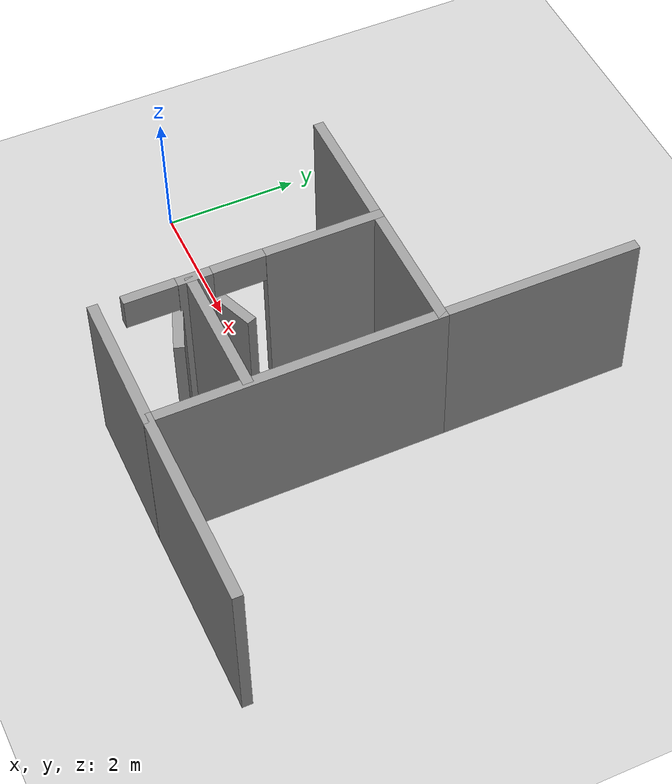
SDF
<sdf version="1.7">
 <world name="default">
  <model name="ground_plane">
   <static>1</static>
   <link name="link">
    <collision name="collision">
     <geometry><plane><normal>0 0 1</normal><size>100 100</size></plane></geometry>
     <surface>
      <contact><collide_bitmask>65535</collide_bitmask></contact>
      <friction><ode><mu>100</mu><mu2>50</mu2></ode></friction>
     </surface>
    </collision>
    <visual name="visual">
     <cast_shadows>0</cast_shadows>
     <geometry><plane><normal>0 0 1</normal><size>100 100</size></plane></geometry>
     <material>
      <script><uri>file://media/materials/scripts/gazebo.material</uri><name>Gazebo/Grey</name></script>
     </material>
    </visual>
   </link>
  </model>
  <model name="demo_clean">
   <link name="Wall_10">
    <pose>5.30351 3.31618 0 0 0 -1.5708</pose>
    <visual name="Wall_10_Visual">
     <pose>0 0 1.25 0 -0 0</pose>
     <geometry><box><size>3 0.15 2.5</size></box></geometry>
     <material>
      <script><uri>file://media/materials/scripts/gazebo.material</uri><name>Gazebo/Grey</name></script>
      <ambient>1 1 1 1</ambient>
      <shader type="pixel"/>
     </material>
     <meta><layer>0</layer></meta>
    </visual>
    <collision name="Wall_10_Collision">
     <pose>0 0 1.25 0 -0 0</pose>
     <geometry><box><size>3 0.15 2.5</size></box></geometry>
     <surface>
      <friction>
       <ode><mu>1</mu><mu2>1</mu2><fdir1>0 0 0</fdir1><slip1>0</slip1><slip2>0</slip2></ode>
       <torsional>
        <coefficient>1</coefficient>
        <patch_radius>0</patch_radius>
        <surface_radius>0</surface_radius>
        <use_patch_radius>1</use_patch_radius>
        <ode><slip>0</slip></ode>
       </torsional>
      </friction>
      <bounce><restitution_coefficient>0</restitution_coefficient><threshold>1e+06</threshold></bounce>
      <contact>
       <collide_without_contact>0</collide_without_contact>
       <collide_without_contact_bitmask>1</collide_without_contact_bitmask>
       <collide_bitmask>1</collide_bitmask>
       <ode>
        <soft_cfm>0</soft_cfm>
        <soft_erp>0.2</soft_erp>
        <kp>1e+13</kp>
        <kd>1</kd>
        <max_vel>0.01</max_vel>
        <min_depth>0</min_depth>
       </ode>
       <bullet>
        <split_impulse>1</split_impulse>
        <split_impulse_penetration_threshold>-0.01</split_impulse_penetration_threshold>
        <soft_cfm>0</soft_cfm>
        <soft_erp>0.2</soft_erp>
        <kp>1e+13</kp>
        <kd>1</kd>
       </bullet>
      </contact>
     </surface>
    </collision>
   </link>
   <link name="Wall_11">
    <pose>3.37851 1.89118 0 0 -0 3.14159</pose>
    <visual name="Wall_11_Visual">
     <pose>0 0 1.25 0 -0 0</pose>
     <geometry><box><size>4 0.15 2.5</size></box></geometry>
     <material>
      <script><uri>file://media/materials/scripts/gazebo.material</uri><name>Gazebo/Grey</name></script>
      <ambient>1 1 1 1</ambient>
      <shader type="pixel"/>
     </material>
     <meta><layer>0</layer></meta>
    </visual>
    <collision name="Wall_11_Collision">
     <pose>0 0 1.25 0 -0 0</pose>
     <geometry><box><size>4 0.15 2.5</size></box></geometry>
     <surface>
      <friction>
       <ode><mu>1</mu><mu2>1</mu2><fdir1>0 0 0</fdir1><slip1>0</slip1><slip2>0</slip2></ode>
       <torsional>
        <coefficient>1</coefficient>
        <patch_radius>0</patch_radius>
        <surface_radius>0</surface_radius>
        <use_patch_radius>1</use_patch_radius>
        <ode><slip>0</slip></ode>
       </torsional>
      </friction>
      <bounce><restitution_coefficient>0</restitution_coefficient><threshold>1e+06</threshold></bounce>
      <contact>
       <collide_without_contact>0</collide_without_contact>
       <collide_without_contact_bitmask>1</collide_without_contact_bitmask>
       <collide_bitmask>1</collide_bitmask>
       <ode>
        <soft_cfm>0</soft_cfm>
        <soft_erp>0.2</soft_erp>
        <kp>1e+13</kp>
        <kd>1</kd>
        <max_vel>0.01</max_vel>
        <min_depth>0</min_depth>
       </ode>
       <bullet>
        <split_impulse>1</split_impulse>
        <split_impulse_penetration_threshold>-0.01</split_impulse_penetration_threshold>
        <soft_cfm>0</soft_cfm>
        <soft_erp>0.2</soft_erp>
        <kp>1e+13</kp>
        <kd>1</kd>
       </bullet>
      </contact>
     </surface>
    </collision>
   </link>
   <link name="Wall_13">
    <pose>5.30351 -0.158824 0 0 0 -1.5708</pose>
    <visual name="Wall_13_Visual">
     <pose>0 0 1.25 0 -0 0</pose>
     <geometry><box><size>4.25 0.15 2.5</size></box></geometry>
     <material>
      <script><uri>file://media/materials/scripts/gazebo.material</uri><name>Gazebo/Grey</name></script>
      <ambient>1 1 1 1</ambient>
      <shader type="pixel"/>
     </material>
     <meta><layer>0</layer></meta>
    </visual>
    <collision name="Wall_13_Collision">
     <pose>0 0 1.25 0 -0 0</pose>
     <geometry><box><size>4.25 0.15 2.5</size></box></geometry>
     <surface>
      <friction>
       <ode><mu>1</mu><mu2>1</mu2><fdir1>0 0 0</fdir1><slip1>0</slip1><slip2>0</slip2></ode>
       <torsional>
        <coefficient>1</coefficient>
        <patch_radius>0</patch_radius>
        <surface_radius>0</surface_radius>
        <use_patch_radius>1</use_patch_radius>
        <ode><slip>0</slip></ode>
       </torsional>
      </friction>
      <bounce><restitution_coefficient>0</restitution_coefficient><threshold>1e+06</threshold></bounce>
      <contact>
       <collide_without_contact>0</collide_without_contact>
       <collide_without_contact_bitmask>1</collide_without_contact_bitmask>
       <collide_bitmask>1</collide_bitmask>
       <ode>
        <soft_cfm>0</soft_cfm>
        <soft_erp>0.2</soft_erp>
        <kp>1e+13</kp>
        <kd>1</kd>
        <max_vel>0.01</max_vel>
        <min_depth>0</min_depth>
       </ode>
       <bullet>
        <split_impulse>1</split_impulse>
        <split_impulse_penetration_threshold>-0.01</split_impulse_penetration_threshold>
        <soft_cfm>0</soft_cfm>
        <soft_erp>0.2</soft_erp>
        <kp>1e+13</kp>
        <kd>1</kd>
       </bullet>
      </contact>
     </surface>
    </collision>
   </link>
   <link name="Wall_14">
    <pose>6.72851 -2.20882 0 0 -0 0</pose>
    <visual name="Wall_14_Visual">
     <pose>0 0 1.25 0 -0 0</pose>
     <geometry><box><size>3 0.15 2.5</size></box></geometry>
     <material>
      <script><uri>file://media/materials/scripts/gazebo.material</uri><name>Gazebo/Grey</name></script>
      <ambient>1 1 1 1</ambient>
      <shader type="pixel"/>
     </material>
     <meta><layer>0</layer></meta>
    </visual>
    <collision name="Wall_14_Collision">
     <pose>0 0 1.25 0 -0 0</pose>
     <geometry><box><size>3 0.15 2.5</size></box></geometry>
     <surface>
      <friction>
       <ode><mu>1</mu><mu2>1</mu2><fdir1>0 0 0</fdir1><slip1>0</slip1><slip2>0</slip2></ode>
       <torsional>
        <coefficient>1</coefficient>
        <patch_radius>0</patch_radius>
        <surface_radius>0</surface_radius>
        <use_patch_radius>1</use_patch_radius>
        <ode><slip>0</slip></ode>
       </torsional>
      </friction>
      <bounce><restitution_coefficient>0</restitution_coefficient><threshold>1e+06</threshold></bounce>
      <contact>
       <collide_without_contact>0</collide_without_contact>
       <collide_without_contact_bitmask>1</collide_without_contact_bitmask>
       <collide_bitmask>1</collide_bitmask>
       <ode>
        <soft_cfm>0</soft_cfm>
        <soft_erp>0.2</soft_erp>
        <kp>1e+13</kp>
        <kd>1</kd>
        <max_vel>0.01</max_vel>
        <min_depth>0</min_depth>
       </ode>
       <bullet>
        <split_impulse>1</split_impulse>
        <split_impulse_penetration_threshold>-0.01</split_impulse_penetration_threshold>
        <soft_cfm>0</soft_cfm>
        <soft_erp>0.2</soft_erp>
        <kp>1e+13</kp>
        <kd>1</kd>
       </bullet>
      </contact>
     </surface>
    </collision>
   </link>
   <link name="Wall_21_clone_0_clone_0_clone_clone_clone_clone_clone_clone_clone_clone">
    <pose>3.68306 -1.18793 -0.23202 0 -0 2.79384</pose>
    <inertial>
     <inertia><ixx>0</ixx><ixy>0</ixy><ixz>0</ixz><iyy>0</iyy><iyz>0</iyz><izz>0</izz></inertia>
     <mass>0</mass>
    </inertial>
    <gravity>0</gravity>
    <visual name="Wall_21_Visual">
     <pose>0 0 1.25 0 -0 0</pose>
     <geometry><box><size>0.663949 0.15 1.96033</size></box></geometry>
     <material>
      <script><uri>file://media/materials/scripts/gazebo.material</uri><name>Gazebo/Grey</name></script>
      <ambient>1 1 1 1</ambient>
      <shader type="pixel"><normal_map>__default__</normal_map></shader>
      <diffuse>0.7 0.7 0.7 1</diffuse>
      <specular>0.01 0.01 0.01 1</specular>
      <emissive>0 0 0 1</emissive>
     </material>
     <meta><layer>0</layer></meta>
    </visual>
    <collision name="Wall_21_Collision">
     <pose>0 0 1.25 0 -0 0</pose>
     <geometry><box><size>0.663949 0.15 1.96033</size></box></geometry>
     <surface>
      <friction>
       <ode><mu>1</mu><mu2>1</mu2><fdir1>0 0 0</fdir1><slip1>0</slip1><slip2>0</slip2></ode>
       <torsional>
        <coefficient>1</coefficient>
        <patch_radius>0</patch_radius>
        <surface_radius>0</surface_radius>
        <use_patch_radius>1</use_patch_radius>
        <ode><slip>0</slip></ode>
       </torsional>
      </friction>
      <bounce><restitution_coefficient>0</restitution_coefficient><threshold>1e+06</threshold></bounce>
      <contact>
       <collide_without_contact>0</collide_without_contact>
       <collide_without_contact_bitmask>1</collide_without_contact_bitmask>
       <collide_bitmask>1</collide_bitmask>
       <ode>
        <soft_cfm>0</soft_cfm>
        <soft_erp>0.2</soft_erp>
        <kp>1e+13</kp>
        <kd>1</kd>
        <max_vel>0.01</max_vel>
        <min_depth>0</min_depth>
       </ode>
       <bullet>
        <split_impulse>1</split_impulse>
        <split_impulse_penetration_threshold>-0.01</split_impulse_penetration_threshold>
        <soft_cfm>0</soft_cfm>
        <soft_erp>0.2</soft_erp>
        <kp>1e+13</kp>
        <kd>1</kd>
       </bullet>
      </contact>
     </surface>
    </collision>
   </link>
   <link name="Wall_21_clone_0_clone_0_clone_clone_clone_clone_clone_clone_clone_clone_clone_clone">
    <pose>3.65792 -0.364043 -0.23202 0 0 -2.77941</pose>
    <inertial>
     <inertia><ixx>0</ixx><ixy>0</ixy><ixz>0</ixz><iyy>0</iyy><iyz>0</iyz><izz>0</izz></inertia>
     <mass>0</mass>
    </inertial>
    <gravity>0</gravity>
    <visual name="Wall_21_Visual">
     <pose>0 0 1.25 0 -0 0</pose>
     <geometry><box><size>0.663949 0.15 1.96033</size></box></geometry>
     <material>
      <script><uri>file://media/materials/scripts/gazebo.material</uri><name>Gazebo/Grey</name></script>
      <ambient>1 1 1 1</ambient>
      <shader type="pixel"><normal_map>__default__</normal_map></shader>
      <diffuse>0.7 0.7 0.7 1</diffuse>
      <specular>0.01 0.01 0.01 1</specular>
      <emissive>0 0 0 1</emissive>
     </material>
     <meta><layer>0</layer></meta>
    </visual>
    <collision name="Wall_21_Collision">
     <pose>0 0 1.25 0 -0 0</pose>
     <geometry><box><size>0.663949 0.15 1.96033</size></box></geometry>
     <surface>
      <friction>
       <ode><mu>1</mu><mu2>1</mu2><fdir1>0 0 0</fdir1><slip1>0</slip1><slip2>0</slip2></ode>
       <torsional>
        <coefficient>1</coefficient>
        <patch_radius>0</patch_radius>
        <surface_radius>0</surface_radius>
        <use_patch_radius>1</use_patch_radius>
        <ode><slip>0</slip></ode>
       </torsional>
      </friction>
      <bounce><restitution_coefficient>0</restitution_coefficient><threshold>1e+06</threshold></bounce>
      <contact>
       <collide_without_contact>0</collide_without_contact>
       <collide_without_contact_bitmask>1</collide_without_contact_bitmask>
       <collide_bitmask>1</collide_bitmask>
       <ode>
        <soft_cfm>0</soft_cfm>
        <soft_erp>0.2</soft_erp>
        <kp>1e+13</kp>
        <kd>1</kd>
        <max_vel>0.01</max_vel>
        <min_depth>0</min_depth>
       </ode>
       <bullet>
        <split_impulse>1</split_impulse>
        <split_impulse_penetration_threshold>-0.01</split_impulse_penetration_threshold>
        <soft_cfm>0</soft_cfm>
        <soft_erp>0.2</soft_erp>
        <kp>1e+13</kp>
        <kd>1</kd>
       </bullet>
      </contact>
     </surface>
    </collision>
   </link>
   <link name="Wall_28_clone_clone_clone_clone">
    <pose>3.33099 -1.42343 1.01168 0 0 -1.57004</pose>
    <inertial>
     <inertia><ixx>0</ixx><ixy>0</ixy><ixz>0</ixz><iyy>0</iyy><iyz>0</iyz><izz>0</izz></inertia>
     <mass>0</mass>
    </inertial>
    <gravity>0</gravity>
    <visual name="Wall_28_Visual">
     <pose>0 0 1.25 0 -0 0</pose>
     <geometry><box><size>0.765639 0.15 0.476648</size></box></geometry>
     <material>
      <script><uri>file://media/materials/scripts/gazebo.material</uri><name>Gazebo/Grey</name></script>
      <ambient>1 1 1 1</ambient>
      <shader type="pixel"><normal_map>__default__</normal_map></shader>
     </material>
     <meta><layer>0</layer></meta>
    </visual>
    <collision name="Wall_28_Collision">
     <pose>0 0 1.25 0 -0 0</pose>
     <geometry><box><size>0.765639 0.15 0.476648</size></box></geometry>
     <surface>
      <friction>
       <ode><mu>1</mu><mu2>1</mu2><fdir1>0 0 0</fdir1><slip1>0</slip1><slip2>0</slip2></ode>
       <torsional>
        <coefficient>1</coefficient>
        <patch_radius>0</patch_radius>
        <surface_radius>0</surface_radius>
        <use_patch_radius>1</use_patch_radius>
        <ode><slip>0</slip></ode>
       </torsional>
      </friction>
      <bounce><restitution_coefficient>0</restitution_coefficient><threshold>1e+06</threshold></bounce>
      <contact>
       <collide_without_contact>0</collide_without_contact>
       <collide_without_contact_bitmask>1</collide_without_contact_bitmask>
       <collide_bitmask>1</collide_bitmask>
       <ode>
        <soft_cfm>0</soft_cfm>
        <soft_erp>0.2</soft_erp>
        <kp>1e+13</kp>
        <kd>1</kd>
        <max_vel>0.01</max_vel>
        <min_depth>0</min_depth>
       </ode>
       <bullet>
        <split_impulse>1</split_impulse>
        <split_impulse_penetration_threshold>-0.01</split_impulse_penetration_threshold>
        <soft_cfm>0</soft_cfm>
        <soft_erp>0.2</soft_erp>
        <kp>1e+13</kp>
        <kd>1</kd>
       </bullet>
      </contact>
     </surface>
    </collision>
   </link>
   <link name="Wall_28_clone_clone_clone_clone_clone">
    <pose>3.33099 -0.160303 1.01168 0 0 -1.57004</pose>
    <inertial>
     <inertia><ixx>0</ixx><ixy>0</ixy><ixz>0</ixz><iyy>0</iyy><iyz>0</iyz><izz>0</izz></inertia>
     <mass>0</mass>
    </inertial>
    <gravity>0</gravity>
    <visual name="Wall_28_Visual">
     <pose>0 0 1.25 0 -0 0</pose>
     <geometry><box><size>0.765639 0.15 0.476648</size></box></geometry>
     <material>
      <script><uri>file://media/materials/scripts/gazebo.material</uri><name>Gazebo/Grey</name></script>
      <ambient>1 1 1 1</ambient>
      <shader type="pixel"><normal_map>__default__</normal_map></shader>
     </material>
     <meta><layer>0</layer></meta>
    </visual>
    <collision name="Wall_28_Collision">
     <pose>0 0 1.25 0 -0 0</pose>
     <geometry><box><size>0.765639 0.15 0.476648</size></box></geometry>
     <surface>
      <friction>
       <ode><mu>1</mu><mu2>1</mu2><fdir1>0 0 0</fdir1><slip1>0</slip1><slip2>0</slip2></ode>
       <torsional>
        <coefficient>1</coefficient>
        <patch_radius>0</patch_radius>
        <surface_radius>0</surface_radius>
        <use_patch_radius>1</use_patch_radius>
        <ode><slip>0</slip></ode>
       </torsional>
      </friction>
      <bounce><restitution_coefficient>0</restitution_coefficient><threshold>1e+06</threshold></bounce>
      <contact>
       <collide_without_contact>0</collide_without_contact>
       <collide_without_contact_bitmask>1</collide_without_contact_bitmask>
       <collide_bitmask>1</collide_bitmask>
       <ode>
        <soft_cfm>0</soft_cfm>
        <soft_erp>0.2</soft_erp>
        <kp>1e+13</kp>
        <kd>1</kd>
        <max_vel>0.01</max_vel>
        <min_depth>0</min_depth>
       </ode>
       <bullet>
        <split_impulse>1</split_impulse>
        <split_impulse_penetration_threshold>-0.01</split_impulse_penetration_threshold>
        <soft_cfm>0</soft_cfm>
        <soft_erp>0.2</soft_erp>
        <kp>1e+13</kp>
        <kd>1</kd>
       </bullet>
      </contact>
     </surface>
    </collision>
   </link>
   <link name="Wall_30">
    <pose>3.33603 -0.791518 0 0 0 -1.5708</pose>
    <visual name="Wall_30_Visual">
     <pose>0 0 1.25 0 -0 0</pose>
     <geometry><box><size>0.5 0.15 2.5</size></box></geometry>
     <material>
      <script><uri>file://media/materials/scripts/gazebo.material</uri><name>Gazebo/Grey</name></script>
      <ambient>1 1 1 1</ambient>
      <shader type="pixel"/>
     </material>
     <meta><layer>0</layer></meta>
    </visual>
    <collision name="Wall_30_Collision">
     <pose>0 0 1.25 0 -0 0</pose>
     <geometry><box><size>0.5 0.15 2.5</size></box></geometry>
     <surface>
      <friction>
       <ode><mu>1</mu><mu2>1</mu2><fdir1>0 0 0</fdir1><slip1>0</slip1><slip2>0</slip2></ode>
       <torsional>
        <coefficient>1</coefficient>
        <patch_radius>0</patch_radius>
        <surface_radius>0</surface_radius>
        <use_patch_radius>1</use_patch_radius>
        <ode><slip>0</slip></ode>
       </torsional>
      </friction>
      <bounce><restitution_coefficient>0</restitution_coefficient><threshold>1e+06</threshold></bounce>
      <contact>
       <collide_without_contact>0</collide_without_contact>
       <collide_without_contact_bitmask>1</collide_without_contact_bitmask>
       <collide_bitmask>1</collide_bitmask>
       <ode>
        <soft_cfm>0</soft_cfm>
        <soft_erp>0.2</soft_erp>
        <kp>1e+13</kp>
        <kd>1</kd>
        <max_vel>0.01</max_vel>
        <min_depth>0</min_depth>
       </ode>
       <bullet>
        <split_impulse>1</split_impulse>
        <split_impulse_penetration_threshold>-0.01</split_impulse_penetration_threshold>
        <soft_cfm>0</soft_cfm>
        <soft_erp>0.2</soft_erp>
        <kp>1e+13</kp>
        <kd>1</kd>
       </bullet>
      </contact>
     </surface>
    </collision>
   </link>
   <link name="Wall_33">
    <pose>4.32187 -0.846909 0 0 -0 3.14159</pose>
    <visual name="Wall_33_Visual">
     <pose>0 0 1.25 0 -0 0</pose>
     <geometry><box><size>2 0.15 2.5</size></box></geometry>
     <material>
      <script><uri>file://media/materials/scripts/gazebo.material</uri><name>Gazebo/Grey</name></script>
      <ambient>1 1 1 1</ambient>
      <shader type="pixel"/>
     </material>
     <meta><layer>0</layer></meta>
    </visual>
    <collision name="Wall_33_Collision">
     <pose>0 0 1.25 0 -0 0</pose>
     <geometry><box><size>2 0.15 2.5</size></box></geometry>
     <surface>
      <friction>
       <ode><mu>1</mu><mu2>1</mu2><fdir1>0 0 0</fdir1><slip1>0</slip1><slip2>0</slip2></ode>
       <torsional>
        <coefficient>1</coefficient>
        <patch_radius>0</patch_radius>
        <surface_radius>0</surface_radius>
        <use_patch_radius>1</use_patch_radius>
        <ode><slip>0</slip></ode>
       </torsional>
      </friction>
      <bounce><restitution_coefficient>0</restitution_coefficient><threshold>1e+06</threshold></bounce>
      <contact>
       <collide_without_contact>0</collide_without_contact>
       <collide_without_contact_bitmask>1</collide_without_contact_bitmask>
       <collide_bitmask>1</collide_bitmask>
       <ode>
        <soft_cfm>0</soft_cfm>
        <soft_erp>0.2</soft_erp>
        <kp>1e+13</kp>
        <kd>1</kd>
        <max_vel>0.01</max_vel>
        <min_depth>0</min_depth>
       </ode>
       <bullet>
        <split_impulse>1</split_impulse>
        <split_impulse_penetration_threshold>-0.01</split_impulse_penetration_threshold>
        <soft_cfm>0</soft_cfm>
        <soft_erp>0.2</soft_erp>
        <kp>1e+13</kp>
        <kd>1</kd>
       </bullet>
      </contact>
     </surface>
    </collision>
   </link>
   <link name="Wall_35">
    <pose>4.31686 -2.19973 0 0 -0 3.13123</pose>
    <visual name="Wall_35_Visual">
     <pose>0 0 1.25 0 -0 0</pose>
     <geometry><box><size>2.12444 0.15 2.5</size></box></geometry>
     <material>
      <script><uri>file://media/materials/scripts/gazebo.material</uri><name>Gazebo/Grey</name></script>
      <ambient>1 1 1 1</ambient>
      <shader type="pixel"/>
     </material>
     <meta><layer>0</layer></meta>
    </visual>
    <collision name="Wall_35_Collision">
     <pose>0 0 1.25 0 -0 0</pose>
     <geometry><box><size>2.12444 0.15 2.5</size></box></geometry>
     <surface>
      <friction>
       <ode><mu>1</mu><mu2>1</mu2><fdir1>0 0 0</fdir1><slip1>0</slip1><slip2>0</slip2></ode>
       <torsional>
        <coefficient>1</coefficient>
        <patch_radius>0</patch_radius>
        <surface_radius>0</surface_radius>
        <use_patch_radius>1</use_patch_radius>
        <ode><slip>0</slip></ode>
       </torsional>
      </friction>
      <bounce><restitution_coefficient>0</restitution_coefficient><threshold>1e+06</threshold></bounce>
      <contact>
       <collide_without_contact>0</collide_without_contact>
       <collide_without_contact_bitmask>1</collide_without_contact_bitmask>
       <collide_bitmask>1</collide_bitmask>
       <ode>
        <soft_cfm>0</soft_cfm>
        <soft_erp>0.2</soft_erp>
        <kp>1e+13</kp>
        <kd>1</kd>
        <max_vel>0.01</max_vel>
        <min_depth>0</min_depth>
       </ode>
       <bullet>
        <split_impulse>1</split_impulse>
        <split_impulse_penetration_threshold>-0.01</split_impulse_penetration_threshold>
        <soft_cfm>0</soft_cfm>
        <soft_erp>0.2</soft_erp>
        <kp>1e+13</kp>
        <kd>1</kd>
       </bullet>
      </contact>
     </surface>
    </collision>
   </link>
   <link name="Wall_46">
    <pose>3.33603 1.08929 0 0 0 -1.5708</pose>
    <visual name="Wall_46_Visual">
     <pose>0 0 1.25 0 -0 0</pose>
     <geometry><box><size>1.75 0.15 2.5</size></box></geometry>
     <material>
      <script><uri>file://media/materials/scripts/gazebo.material</uri><name>Gazebo/Grey</name></script>
      <ambient>1 1 1 1</ambient>
      <shader type="pixel"/>
     </material>
     <meta><layer>0</layer></meta>
    </visual>
    <collision name="Wall_46_Collision">
     <pose>0 0 1.25 0 -0 0</pose>
     <geometry><box><size>1.75 0.15 2.5</size></box></geometry>
     <surface>
      <friction>
       <ode><mu>1</mu><mu2>1</mu2><fdir1>0 0 0</fdir1><slip1>0</slip1><slip2>0</slip2></ode>
       <torsional>
        <coefficient>1</coefficient>
        <patch_radius>0</patch_radius>
        <surface_radius>0</surface_radius>
        <use_patch_radius>1</use_patch_radius>
        <ode><slip>0</slip></ode>
       </torsional>
      </friction>
      <bounce><restitution_coefficient>0</restitution_coefficient><threshold>1e+06</threshold></bounce>
      <contact>
       <collide_without_contact>0</collide_without_contact>
       <collide_without_contact_bitmask>1</collide_without_contact_bitmask>
       <collide_bitmask>1</collide_bitmask>
       <ode>
        <soft_cfm>0</soft_cfm>
        <soft_erp>0.2</soft_erp>
        <kp>1e+13</kp>
        <kd>1</kd>
        <max_vel>0.01</max_vel>
        <min_depth>0</min_depth>
       </ode>
       <bullet>
        <split_impulse>1</split_impulse>
        <split_impulse_penetration_threshold>-0.01</split_impulse_penetration_threshold>
        <soft_cfm>0</soft_cfm>
        <soft_erp>0.2</soft_erp>
        <kp>1e+13</kp>
        <kd>1</kd>
       </bullet>
      </contact>
     </surface>
    </collision>
   </link>
   <static>1</static>
  </model>
 </world>
</sdf>
